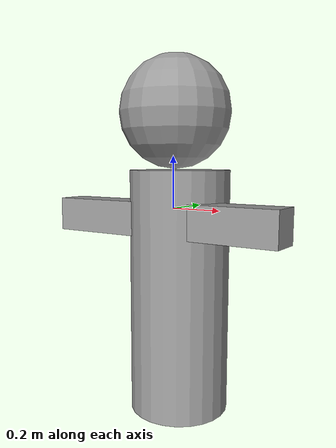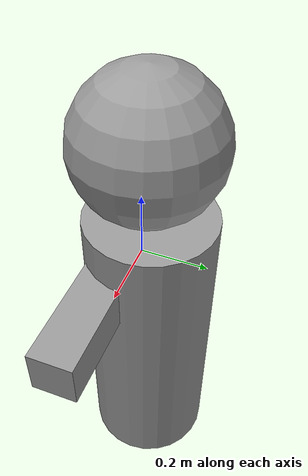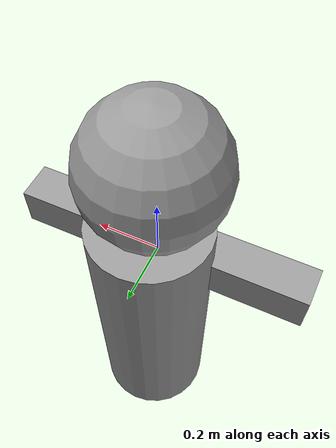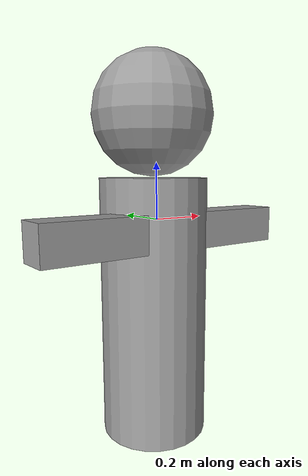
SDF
<?xml version='1.0'?>
<sdf version='1.7'>
  <model name='human'>
    <link name='link_0'>
      <inertial>
        <mass>0.142839</mass>
        <inertia>
          <ixx>0.0121475</ixx>
          <ixy>0</ixy>
          <ixz>0</ixz>
          <iyy>0.0121475</iyy>
          <iyz>0</iyz>
          <izz>0.00267643</izz>
        </inertia>
        <pose>0 0 0 0 -0 0</pose>
      </inertial>
      <pose>0.008516 0.031929 -0.329122 0 -0 0</pose>
      <visual name='visual'>
        <pose>0 0 0 0 -0 0</pose>
        <geometry>
          <cylinder>
            <radius>0.193584</radius>
            <length>0.95294</length>
          </cylinder>
        </geometry>
        <material>
          <lighting>1</lighting>
          <script>
            <uri>file://media/materials/scripts/gazebo.material</uri>
            <name>Gazebo/Grey</name>
          </script>
          <shader type='pixel'/>
        </material>
        <transparency>0</transparency>
        <cast_shadows>1</cast_shadows>
      </visual>
      <collision name='collision'>
        <laser_retro>0</laser_retro>
        <max_contacts>10</max_contacts>
        <pose>0 0 0 0 -0 0</pose>
        <geometry>
          <cylinder>
            <radius>0.193584</radius>
            <length>0.95294</length>
          </cylinder>
        </geometry>
        <surface>
          <friction>
            <ode>
              <mu>1</mu>
              <mu2>1</mu2>
              <fdir1>0 0 0</fdir1>
              <slip1>0</slip1>
              <slip2>0</slip2>
            </ode>
            <torsional>
              <coefficient>1</coefficient>
              <patch_radius>0</patch_radius>
              <surface_radius>0</surface_radius>
              <use_patch_radius>1</use_patch_radius>
              <ode>
                <slip>0</slip>
              </ode>
            </torsional>
          </friction>
          <bounce>
            <restitution_coefficient>0</restitution_coefficient>
            <threshold>1e+06</threshold>
          </bounce>
          <contact>
            <collide_without_contact>0</collide_without_contact>
            <collide_without_contact_bitmask>1</collide_without_contact_bitmask>
            <collide_bitmask>1</collide_bitmask>
            <ode>
              <soft_cfm>0</soft_cfm>
              <soft_erp>0.2</soft_erp>
              <kp>1e+13</kp>
              <kd>1</kd>
              <max_vel>0.01</max_vel>
              <min_depth>0</min_depth>
            </ode>
            <bullet>
              <split_impulse>1</split_impulse>
              <split_impulse_penetration_threshold>-0.01</split_impulse_penetration_threshold>
              <soft_cfm>0</soft_cfm>
              <soft_erp>0.2</soft_erp>
              <kp>1e+13</kp>
              <kd>1</kd>
            </bullet>
          </contact>
        </surface>
      </collision>
    </link>
    <link name='link_1'>
      <inertial>
        <mass>0.0778712</mass>
        <inertia>
          <ixx>0.00142002</ixx>
          <ixy>0</ixy>
          <ixz>0</ixz>
          <iyy>0.00142002</iyy>
          <iyz>0</iyz>
          <izz>0.00142002</izz>
        </inertia>
        <pose>0 0 0 0 -0 0</pose>
      </inertial>
      <pose>-0.003621 0.018816 0.365537 0 -0 0</pose>
      <visual name='visual'>
        <pose>0 0 0 0 -0 0</pose>
        <geometry>
          <sphere>
            <radius>0.213515</radius>
          </sphere>
        </geometry>
        <material>
          <lighting>1</lighting>
          <script>
            <uri>file://media/materials/scripts/gazebo.material</uri>
            <name>Gazebo/Grey</name>
          </script>
          <shader type='pixel'/>
        </material>
        <transparency>0</transparency>
        <cast_shadows>1</cast_shadows>
      </visual>
      <collision name='collision'>
        <laser_retro>0</laser_retro>
        <max_contacts>10</max_contacts>
        <pose>0 0 0 0 -0 0</pose>
        <geometry>
          <sphere>
            <radius>0.213515</radius>
          </sphere>
        </geometry>
        <surface>
          <friction>
            <ode>
              <mu>1</mu>
              <mu2>1</mu2>
              <fdir1>0 0 0</fdir1>
              <slip1>0</slip1>
              <slip2>0</slip2>
            </ode>
            <torsional>
              <coefficient>1</coefficient>
              <patch_radius>0</patch_radius>
              <surface_radius>0</surface_radius>
              <use_patch_radius>1</use_patch_radius>
              <ode>
                <slip>0</slip>
              </ode>
            </torsional>
          </friction>
          <bounce>
            <restitution_coefficient>0</restitution_coefficient>
            <threshold>1e+06</threshold>
          </bounce>
          <contact>
            <collide_without_contact>0</collide_without_contact>
            <collide_without_contact_bitmask>1</collide_without_contact_bitmask>
            <collide_bitmask>1</collide_bitmask>
            <ode>
              <soft_cfm>0</soft_cfm>
              <soft_erp>0.2</soft_erp>
              <kp>1e+13</kp>
              <kd>1</kd>
              <max_vel>0.01</max_vel>
              <min_depth>0</min_depth>
            </ode>
            <bullet>
              <split_impulse>1</split_impulse>
              <split_impulse_penetration_threshold>-0.01</split_impulse_penetration_threshold>
              <soft_cfm>0</soft_cfm>
              <soft_erp>0.2</soft_erp>
              <kp>1e+13</kp>
              <kd>1</kd>
            </bullet>
          </contact>
        </surface>
      </collision>
    </link>
    <link name='link_2'>
      <inertial>
        <mass>0.0161853</mass>
        <inertia>
          <ixx>4.54901e-05</ixx>
          <ixy>0</ixy>
          <ixz>0</ixz>
          <iyy>0.00126685</iyy>
          <iyz>0</iyz>
          <izz>0.00126565</izz>
        </inertia>
        <pose>0 0 0 0 -0 0</pose>
      </inertial>
      <pose>-0.004892 -0.050751 -0.036416 0 -0 0</pose>
      <visual name='visual'>
        <pose>0 0 0 0 -0 0</pose>
        <geometry>
          <box>
            <size>0.960182 0.128141 0.131555</size>
          </box>
        </geometry>
        <material>
          <lighting>1</lighting>
          <script>
            <uri>file://media/materials/scripts/gazebo.material</uri>
            <name>Gazebo/Grey</name>
          </script>
          <shader type='pixel'/>
        </material>
        <transparency>0</transparency>
        <cast_shadows>1</cast_shadows>
      </visual>
      <collision name='collision'>
        <laser_retro>0</laser_retro>
        <max_contacts>10</max_contacts>
        <pose>0 0 0 0 -0 0</pose>
        <geometry>
          <box>
            <size>0.960182 0.128141 0.131555</size>
          </box>
        </geometry>
        <surface>
          <friction>
            <ode>
              <mu>1</mu>
              <mu2>1</mu2>
              <fdir1>0 0 0</fdir1>
              <slip1>0</slip1>
              <slip2>0</slip2>
            </ode>
            <torsional>
              <coefficient>1</coefficient>
              <patch_radius>0</patch_radius>
              <surface_radius>0</surface_radius>
              <use_patch_radius>1</use_patch_radius>
              <ode>
                <slip>0</slip>
              </ode>
            </torsional>
          </friction>
          <bounce>
            <restitution_coefficient>0</restitution_coefficient>
            <threshold>1e+06</threshold>
          </bounce>
          <contact>
            <collide_without_contact>0</collide_without_contact>
            <collide_without_contact_bitmask>1</collide_without_contact_bitmask>
            <collide_bitmask>1</collide_bitmask>
            <ode>
              <soft_cfm>0</soft_cfm>
              <soft_erp>0.2</soft_erp>
              <kp>1e+13</kp>
              <kd>1</kd>
              <max_vel>0.01</max_vel>
              <min_depth>0</min_depth>
            </ode>
            <bullet>
              <split_impulse>1</split_impulse>
              <split_impulse_penetration_threshold>-0.01</split_impulse_penetration_threshold>
              <soft_cfm>0</soft_cfm>
              <soft_erp>0.2</soft_erp>
              <kp>1e+13</kp>
              <kd>1</kd>
            </bullet>
          </contact>
        </surface>
      </collision>
    </link>
    <static>1</static>
    <allow_auto_disable>1</allow_auto_disable>
  </model>
</sdf>
